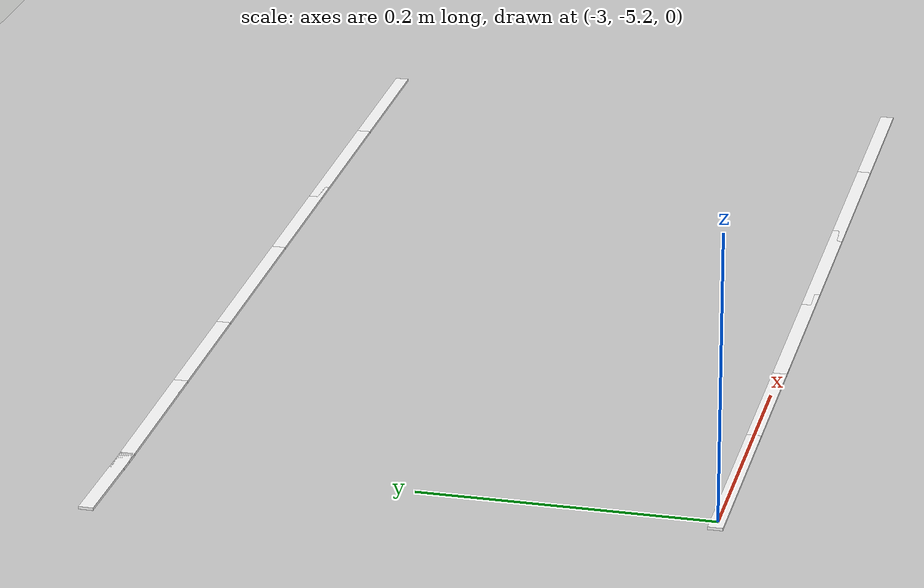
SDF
<sdf version="1.7">
 <world name="default">
  <model name="ground_plane">
   <static>1</static>
   <link name="link">
    <collision name="collision">
     <geometry><plane><normal>0 0 1</normal><size>100 100</size></plane></geometry>
     <surface>
      <contact><collide_bitmask>65535</collide_bitmask></contact>
      <friction><ode><mu>100</mu><mu2>50</mu2></ode></friction>
     </surface>
    </collision>
    <visual name="visual">
     <cast_shadows>0</cast_shadows>
     <geometry><plane><normal>0 0 1</normal><size>100 100</size></plane></geometry>
     <material>
      <script><uri>file://media/materials/scripts/gazebo.material</uri><name>Gazebo/Grey</name></script>
     </material>
    </visual>
   </link>
  </model>
  <model name="lane_line_left_0">
   <static>1</static>
   <link name="link">
    <pose>0 0 -0.004 0 -0 0</pose>
    <visual name="visual">
     <geometry><box><size>0.1424 0.01 0.01</size></box></geometry>
     <material><ambient>1 1 1 1</ambient><diffuse>1 1 1 1</diffuse></material>
    </visual>
    <collision name="collision"><geometry><box><size>0.1424 0.01 0.01</size></box></geometry></collision>
   </link>
   <pose>-2.93878 -4.8 0 0 -0 0</pose>
  </model>
  <model name="lane_line_right_0">
   <static>1</static>
   <link name="link">
    <pose>0 0 -0.004 0 -0 0</pose>
    <visual name="visual">
     <geometry><box><size>0.1424 0.01 0.01</size></box></geometry>
     <material><ambient>1 1 1 1</ambient><diffuse>1 1 1 1</diffuse></material>
    </visual>
    <collision name="collision"><geometry><box><size>0.1424 0.01 0.01</size></box></geometry></collision>
   </link>
   <pose>-2.93878 -5.2 0 0 -0 0</pose>
  </model>
  <model name="lane_line_left_1">
   <static>1</static>
   <link name="link">
    <pose>0 0 -0.004 0 -0 0</pose>
    <visual name="visual">
     <geometry><box><size>0.1424 0.01 0.01</size></box></geometry>
     <material><ambient>1 1 1 1</ambient><diffuse>1 1 1 1</diffuse></material>
    </visual>
    <collision name="collision"><geometry><box><size>0.1424 0.01 0.01</size></box></geometry></collision>
   </link>
   <pose>-2.81633 -4.8 0 0 -0 0</pose>
  </model>
  <model name="lane_line_right_1">
   <static>1</static>
   <link name="link">
    <pose>0 0 -0.004 0 -0 0</pose>
    <visual name="visual">
     <geometry><box><size>0.1424 0.01 0.01</size></box></geometry>
     <material><ambient>1 1 1 1</ambient><diffuse>1 1 1 1</diffuse></material>
    </visual>
    <collision name="collision"><geometry><box><size>0.1424 0.01 0.01</size></box></geometry></collision>
   </link>
   <pose>-2.81633 -5.2 0 0 -0 0</pose>
  </model>
  <model name="lane_line_left_2">
   <static>1</static>
   <link name="link">
    <pose>0 0 -0.004 0 -0 0</pose>
    <visual name="visual">
     <geometry><box><size>0.1424 0.01 0.01</size></box></geometry>
     <material><ambient>1 1 1 1</ambient><diffuse>1 1 1 1</diffuse></material>
    </visual>
    <collision name="collision"><geometry><box><size>0.1424 0.01 0.01</size></box></geometry></collision>
   </link>
   <pose>-2.69388 -4.8 0 0 -0 0</pose>
  </model>
  <model name="lane_line_right_2">
   <static>1</static>
   <link name="link">
    <pose>0 0 -0.004 0 -0 0</pose>
    <visual name="visual">
     <geometry><box><size>0.1424 0.01 0.01</size></box></geometry>
     <material><ambient>1 1 1 1</ambient><diffuse>1 1 1 1</diffuse></material>
    </visual>
    <collision name="collision"><geometry><box><size>0.1424 0.01 0.01</size></box></geometry></collision>
   </link>
   <pose>-2.69388 -5.2 0 0 -0 0</pose>
  </model>
  <model name="lane_line_left_3">
   <static>1</static>
   <link name="link">
    <pose>0 0 -0.004 0 -0 0</pose>
    <visual name="visual">
     <geometry><box><size>0.1424 0.01 0.01</size></box></geometry>
     <material><ambient>1 1 1 1</ambient><diffuse>1 1 1 1</diffuse></material>
    </visual>
    <collision name="collision"><geometry><box><size>0.1424 0.01 0.01</size></box></geometry></collision>
   </link>
   <pose>-2.57143 -4.8 0 0 -0 0</pose>
  </model>
  <model name="lane_line_right_3">
   <static>1</static>
   <link name="link">
    <pose>0 0 -0.004 0 -0 0</pose>
    <visual name="visual">
     <geometry><box><size>0.1424 0.01 0.01</size></box></geometry>
     <material><ambient>1 1 1 1</ambient><diffuse>1 1 1 1</diffuse></material>
    </visual>
    <collision name="collision"><geometry><box><size>0.1424 0.01 0.01</size></box></geometry></collision>
   </link>
   <pose>-2.57143 -5.2 0 0 -0 0</pose>
  </model>
  <model name="lane_line_left_4">
   <static>1</static>
   <link name="link">
    <pose>0 0 -0.004 0 -0 0</pose>
    <visual name="visual">
     <geometry><box><size>0.1424 0.01 0.01</size></box></geometry>
     <material><ambient>1 1 1 1</ambient><diffuse>1 1 1 1</diffuse></material>
    </visual>
    <collision name="collision"><geometry><box><size>0.1424 0.01 0.01</size></box></geometry></collision>
   </link>
   <pose>-2.44898 -4.8 0 0 -0 0</pose>
  </model>
  <model name="lane_line_right_4">
   <static>1</static>
   <link name="link">
    <pose>0 0 -0.004 0 -0 0</pose>
    <visual name="visual">
     <geometry><box><size>0.1424 0.01 0.01</size></box></geometry>
     <material><ambient>1 1 1 1</ambient><diffuse>1 1 1 1</diffuse></material>
    </visual>
    <collision name="collision"><geometry><box><size>0.1424 0.01 0.01</size></box></geometry></collision>
   </link>
   <pose>-2.44898 -5.2 0 0 -0 0</pose>
  </model>
  <model name="lane_line_left_5">
   <static>1</static>
   <link name="link">
    <pose>0 0 -0.004 0 -0 0</pose>
    <visual name="visual">
     <geometry><box><size>0.1424 0.01 0.01</size></box></geometry>
     <material><ambient>1 1 1 1</ambient><diffuse>1 1 1 1</diffuse></material>
    </visual>
    <collision name="collision"><geometry><box><size>0.1424 0.01 0.01</size></box></geometry></collision>
   </link>
   <pose>-2.32653 -4.8 0 0 -0 0</pose>
  </model>
  <model name="lane_line_right_5">
   <static>1</static>
   <link name="link">
    <pose>0 0 -0.004 0 -0 0</pose>
    <visual name="visual">
     <geometry><box><size>0.1424 0.01 0.01</size></box></geometry>
     <material><ambient>1 1 1 1</ambient><diffuse>1 1 1 1</diffuse></material>
    </visual>
    <collision name="collision"><geometry><box><size>0.1424 0.01 0.01</size></box></geometry></collision>
   </link>
   <pose>-2.32653 -5.2 0 0 -0 0</pose>
  </model>
  <model name="lane_line_left_398">
   <static>1</static>
   <link name="link">
    <pose>0 0 -0.004 0 -0 0</pose>
    <visual name="visual">
     <geometry><box><size>0.0841 0.01 0.01</size></box></geometry>
     <material><ambient>1 1 1 1</ambient><diffuse>1 1 1 1</diffuse></material>
    </visual>
    <collision name="collision"><geometry><box><size>0.0841 0.01 0.01</size></box></geometry></collision>
   </link>
   <pose>-3.02885 -4.79951 0 0 0 -0.016029</pose>
  </model>
 </world>
</sdf>
